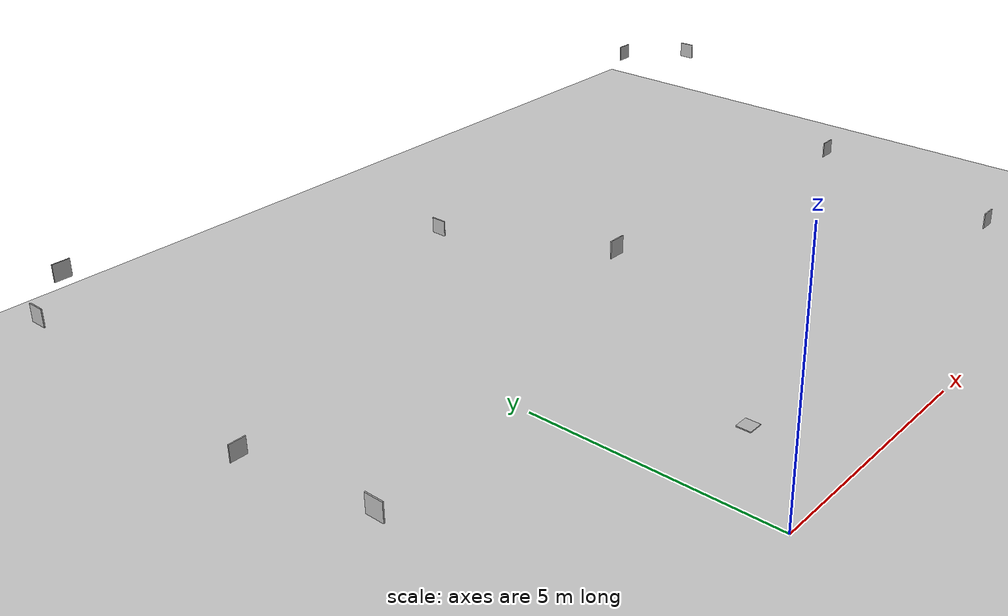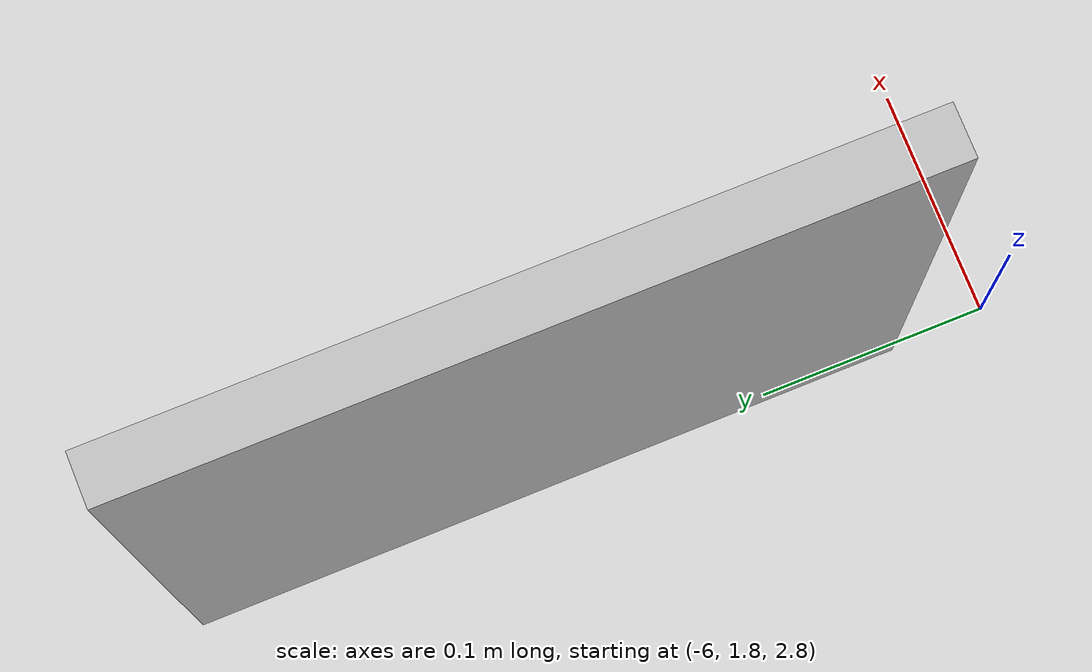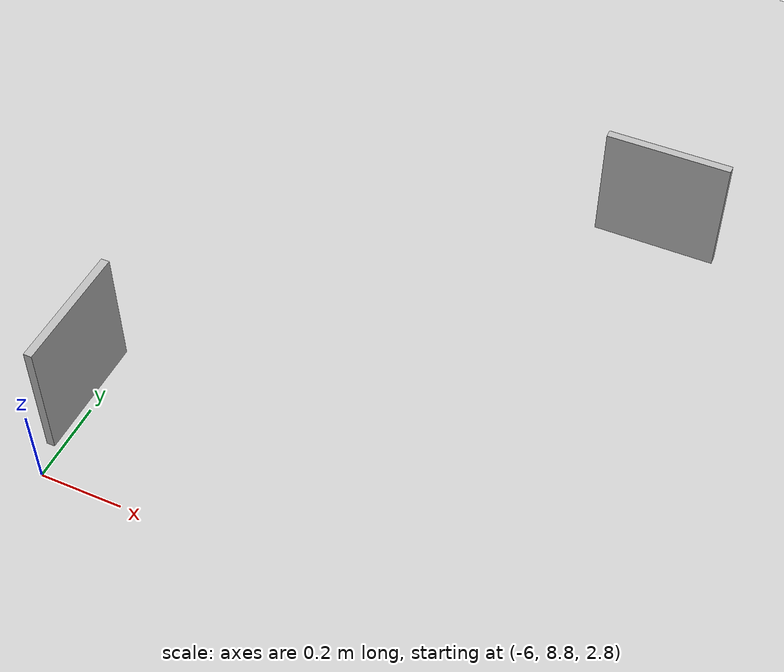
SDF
<sdf version="1.6">
 <world name="default">
  <include><uri>model://ground_plane</uri></include>
  <light name="point_light0" type="point">
   <pose>-5 1 1.5 0 0 0</pose>
   <diffuse>204 204 204 255</diffuse>
   <specular>51 51 51 255</specular>
   <attenuation>
    <range>400</range>
    <linear>0.01</linear>
    <constant>0.5</constant>
    <quadratic>0.00</quadratic>
   </attenuation>
   <cast_shadows>0</cast_shadows>
   <direction>0 0 -1</direction>
  </light>
  <light name="point_light1" type="point">
   <pose>-6 8 2.5 0 0 0</pose>
   <diffuse>127 127 127 255</diffuse>
   <specular>25 25 25 255</specular>
   <attenuation>
    <range>40</range>
    <linear>0.01</linear>
    <constant>0.5</constant>
    <quadratic>0.00</quadratic>
   </attenuation>
   <cast_shadows>0</cast_shadows>
   <direction>0 0 -1</direction>
  </light>
  <light name="point_light2" type="point">
   <pose>7.7 7 1 0 0 0</pose>
   <diffuse>127 127 127 255</diffuse>
   <specular>25 25 25 255</specular>
   <attenuation>
    <range>40</range>
    <linear>0.01</linear>
    <constant>0.5</constant>
    <quadratic>0.00</quadratic>
   </attenuation>
   <cast_shadows>0</cast_shadows>
   <direction>0 0 -1</direction>
  </light>
  <light name="point_light3" type="point">
   <pose>5 12 2 0 0 0</pose>
   <diffuse>127 127 127 255</diffuse>
   <specular>25 25 25 255</specular>
   <attenuation>
    <range>40</range>
    <linear>0.01</linear>
    <constant>0.5</constant>
    <quadratic>0.00</quadratic>
   </attenuation>
   <cast_shadows>0</cast_shadows>
   <direction>0 0 -1</direction>
  </light>
  <include><uri>model://posAprilTags</uri></include>
 </world>
</sdf>

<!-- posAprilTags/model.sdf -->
<sdf version='1.6'>
  <model name='posAprilTags'>
    <model name='tag_0'>
      <pose frame=''>1 4 3 -1.57079 -1.57079 3.14159</pose>
      <static>1</static>
      <link name='link'>
        <collision name='collision'>
          <geometry>
            <box>
              <size>0.3 0.3 0.02</size>
            </box>
          </geometry>
          <max_contacts>10</max_contacts>
          <surface>
            <contact>
              <ode/>
            </contact>
            <bounce/>
            <friction>
              <torsional>
                <ode/>
              </torsional>
              <ode/>
            </friction>
          </surface>
        </collision>
        <visual name='visual'>
          <geometry>
            <box>
              <size>0.3 0.3 0.02</size>
            </box>
          </geometry>
          <material>
            <script>
              <uri>file://tags_material/scripts/tags.material</uri>
              <name>Tag36_11_00000</name>
            </script>
          </material>
        </visual>
        <self_collide>0</self_collide>
        <kinematic>0</kinematic>
      </link>
      <static>0</static>
    </model>
    <model name='tag_2'>
      <pose frame=''>-6 2 3 3.14159 -1.57079 3.14159</pose>
      <static>1</static>
      <link name='link'>
        <collision name='collision'>
          <geometry>
            <box>
              <size>0.3 0.3 0.02</size>
            </box>
          </geometry>
          <max_contacts>10</max_contacts>
          <surface>
            <contact>
              <ode/>
            </contact>
            <bounce/>
            <friction>
              <torsional>
                <ode/>
              </torsional>
              <ode/>
            </friction>
          </surface>
        </collision>
        <visual name='visual'>
          <geometry>
            <box>
              <size>0.3 0.3 0.02</size>
            </box>
          </geometry>
          <material>
            <script>
              <uri>file://tags_material/scripts/tags.material</uri>
              <name>Tag36_11_00002</name>
            </script>
          </material>
        </visual>
        <self_collide>0</self_collide>
        <kinematic>0</kinematic>
      </link>
      <static>0</static>
    </model>
    <model name='tag_3'>
      <pose frame=''>-6 9 3 3.14159 -1.57079 3.14159</pose>
      <static>1</static>
      <link name='link'>
        <collision name='collision'>
          <geometry>
            <box>
              <size>0.3 0.3 0.02</size>
            </box>
          </geometry>
          <max_contacts>10</max_contacts>
          <surface>
            <contact>
              <ode/>
            </contact>
            <bounce/>
            <friction>
              <torsional>
                <ode/>
              </torsional>
              <ode/>
            </friction>
          </surface>
        </collision>
        <visual name='visual'>
          <geometry>
            <box>
              <size>0.3 0.3 0.02</size>
            </box>
          </geometry>
          <material>
            <script>
              <uri>file://tags_material/scripts/tags.material</uri>
              <name>Tag36_11_00003</name>
            </script>
          </material>
        </visual>
        <self_collide>0</self_collide>
        <kinematic>0</kinematic>
      </link>
      <static>0</static>
    </model>
    <model name='tag_4'>
      <pose frame=''>-5 6 1.5 -1.57079 -1.57079 3.14159</pose>
      <static>1</static>
      <link name='link'>
        <collision name='collision'>
          <geometry>
            <box>
              <size>0.3 0.3 0.02</size>
            </box>
          </geometry>
          <max_contacts>10</max_contacts>
          <surface>
            <contact>
              <ode/>
            </contact>
            <bounce/>
            <friction>
              <torsional>
                <ode/>
              </torsional>
              <ode/>
            </friction>
          </surface>
        </collision>
        <visual name='visual'>
          <geometry>
            <box>
              <size>0.3 0.3 0.02</size>
            </box>
          </geometry>
          <material>
            <script>
              <uri>file://tags_material/scripts/tags.material</uri>
              <name>Tag36_11_00004</name>
            </script>
          </material>
        </visual>
        <self_collide>0</self_collide>
        <kinematic>0</kinematic>
      </link>
      <static>0</static>
    </model>
    <model name='tag_6'>
      <pose frame=''>-5 10 3 1.57079 -1.57079 3.14159</pose>
      <static>1</static>
      <link name='link'>
        <collision name='collision'>
          <geometry>
            <box>
              <size>0.3 0.3 0.02</size>
            </box>
          </geometry>
          <max_contacts>10</max_contacts>
          <surface>
            <contact>
              <ode/>
            </contact>
            <bounce/>
            <friction>
              <torsional>
                <ode/>
              </torsional>
              <ode/>
            </friction>
          </surface>
        </collision>
        <visual name='visual'>
          <geometry>
            <box>
              <size>0.3 0.3 0.02</size>
            </box>
          </geometry>
          <material>
            <script>
              <uri>file://tags_material/scripts/tags.material</uri>
              <name>Tag36_11_00006</name>
            </script>
          </material>
        </visual>
        <self_collide>0</self_collide>
        <kinematic>0</kinematic>
      </link>
      <static>0</static>
    </model>
    <model name='tag_7'>
      <pose frame=''>2 9 1.5 3.14159 -1.57079 3.14159</pose>
      <static>1</static>
      <link name='link'>
        <collision name='collision'>
          <geometry>
            <box>
              <size>0.3 0.3 0.02</size>
            </box>
          </geometry>
          <max_contacts>10</max_contacts>
          <surface>
            <contact>
              <ode/>
            </contact>
            <bounce/>
            <friction>
              <torsional>
                <ode/>
              </torsional>
              <ode/>
            </friction>
          </surface>
        </collision>
        <visual name='visual'>
          <geometry>
            <box>
              <size>0.3 0.3 0.02</size>
            </box>
          </geometry>
          <material>
            <script>
              <uri>file://tags_material/scripts/tags.material</uri>
              <name>Tag36_11_00007</name>
            </script>
          </material>
        </visual>
        <self_collide>0</self_collide>
        <kinematic>0</kinematic>
      </link>
      <static>0</static>
    </model>
    <model name='tag_8'>
      <pose frame=''>10 9 3 3.14159 -1.57079 3.14159</pose>
      <static>1</static>
      <link name='link'>
        <collision name='collision'>
          <geometry>
            <box>
              <size>0.3 0.3 0.02</size>
            </box>
          </geometry>
          <max_contacts>10</max_contacts>
          <surface>
            <contact>
              <ode/>
            </contact>
            <bounce/>
            <friction>
              <torsional>
                <ode/>
              </torsional>
              <ode/>
            </friction>
          </surface>
        </collision>
        <visual name='visual'>
          <geometry>
            <box>
              <size>0.3 0.3 0.02</size>
            </box>
          </geometry>
          <material>
            <script>
              <uri>file://tags_material/scripts/tags.material</uri>
              <name>Tag36_11_00008</name>
            </script>
          </material>
        </visual>
        <self_collide>0</self_collide>
        <kinematic>0</kinematic>
      </link>
      <static>0</static>
    </model>
    <model name='tag_9'>
      <pose frame=''>9 10 3 1.57079 -1.57079 3.14159</pose>
      <static>1</static>
      <link name='link'>
        <collision name='collision'>
          <geometry>
            <box>
              <size>0.3 0.3 0.02</size>
            </box>
          </geometry>
          <max_contacts>10</max_contacts>
          <surface>
            <contact>
              <ode/>
            </contact>
            <bounce/>
            <friction>
              <torsional>
                <ode/>
              </torsional>
              <ode/>
            </friction>
          </surface>
        </collision>
        <visual name='visual'>
          <geometry>
            <box>
              <size>0.3 0.3 0.02</size>
            </box>
          </geometry>
          <material>
            <script>
              <uri>file://tags_material/scripts/tags.material</uri>
              <name>Tag36_11_00009</name>
            </script>
          </material>
        </visual>
        <self_collide>0</self_collide>
        <kinematic>0</kinematic>
      </link>
      <static>0</static>
    </model>
    <model name='tag_10'>
      <pose frame=''>9.5 5 1.8 -1.57079 -1.57079 3.14159</pose>
      <static>1</static>
      <link name='link'>
        <collision name='collision'>
          <geometry>
            <box>
              <size>0.3 0.3 0.02</size>
            </box>
          </geometry>
          <max_contacts>10</max_contacts>
          <surface>
            <contact>
              <ode/>
            </contact>
            <bounce/>
            <friction>
              <torsional>
                <ode/>
              </torsional>
              <ode/>
            </friction>
          </surface>
        </collision>
        <visual name='visual'>
          <geometry>
            <box>
              <size>0.3 0.3 0.02</size>
            </box>
          </geometry>
          <material>
            <script>
              <uri>file://tags_material/scripts/tags.material</uri>
              <name>Tag36_11_00010</name>
            </script>
          </material>
        </visual>
        <self_collide>0</self_collide>
        <kinematic>0</kinematic>
      </link>
      <static>0</static>
    </model>
    <model name='tag_11'>
      <pose frame=''>8.5 1 1.7 1.57079 -1.57079 3.14159</pose>
      <static>1</static>
      <link name='link'>
        <collision name='collision'>
          <geometry>
            <box>
              <size>0.3 0.3 0.02</size>
            </box>
          </geometry>
          <max_contacts>10</max_contacts>
          <surface>
            <contact>
              <ode/>
            </contact>
            <bounce/>
            <friction>
              <torsional>
                <ode/>
              </torsional>
              <ode/>
            </friction>
          </surface>
        </collision>
        <visual name='visual'>
          <geometry>
            <box>
              <size>0.3 0.3 0.02</size>
            </box>
          </geometry>
          <material>
            <script>
              <uri>file://tags_material/scripts/tags.material</uri>
              <name>Tag36_11_00011</name>
            </script>
          </material>
        </visual>
        <self_collide>0</self_collide>
        <kinematic>0</kinematic>
      </link>
      <static>0</static>
    </model>
    <model name='tag_23'>
      <pose frame=''>2 2 0 0 -0 0</pose>
      <static>1</static>
      <link name='link'>
        <collision name='collision'>
          <geometry>
            <box>
              <size>0.3 0.3 0.02</size>
            </box>
          </geometry>
          <max_contacts>10</max_contacts>
          <surface>
            <contact>
              <ode/>
            </contact>
            <bounce/>
            <friction>
              <torsional>
                <ode/>
              </torsional>
              <ode/>
            </friction>
          </surface>
        </collision>
        <visual name='visual'>
          <geometry>
            <box>
              <size>0.3 0.3 0.02</size>
            </box>
          </geometry>
          <material>
            <script>
              <uri>file://tags_material/scripts/tags.material</uri>
              <name>Tag36_11_00023</name>
            </script>
          </material>
        </visual>
        <self_collide>0</self_collide>
        <kinematic>0</kinematic>
      </link>
      <static>0</static>
    </model>
  </model>
</sdf>
